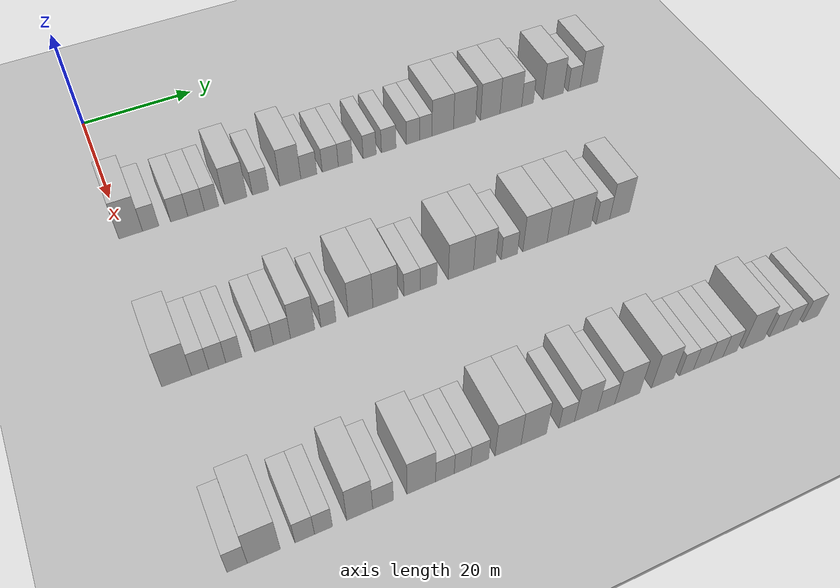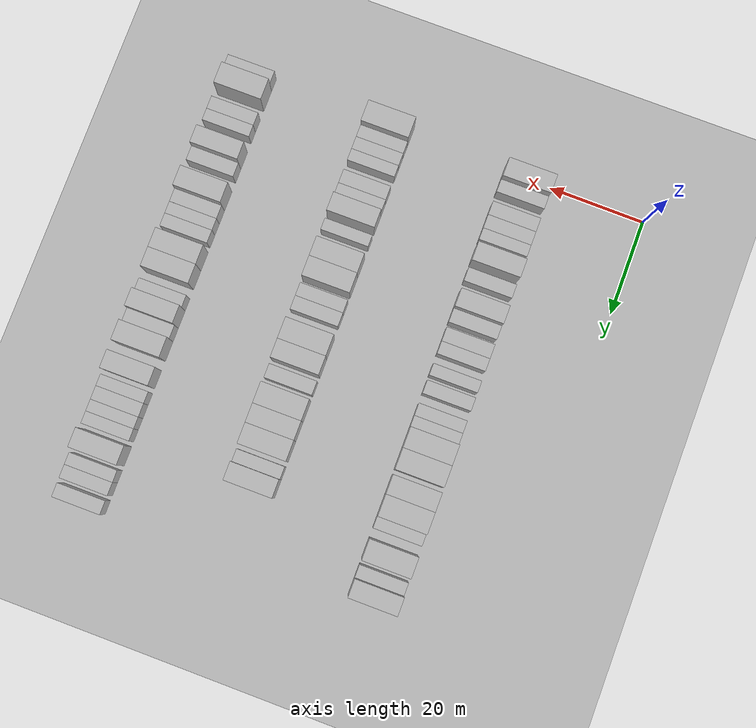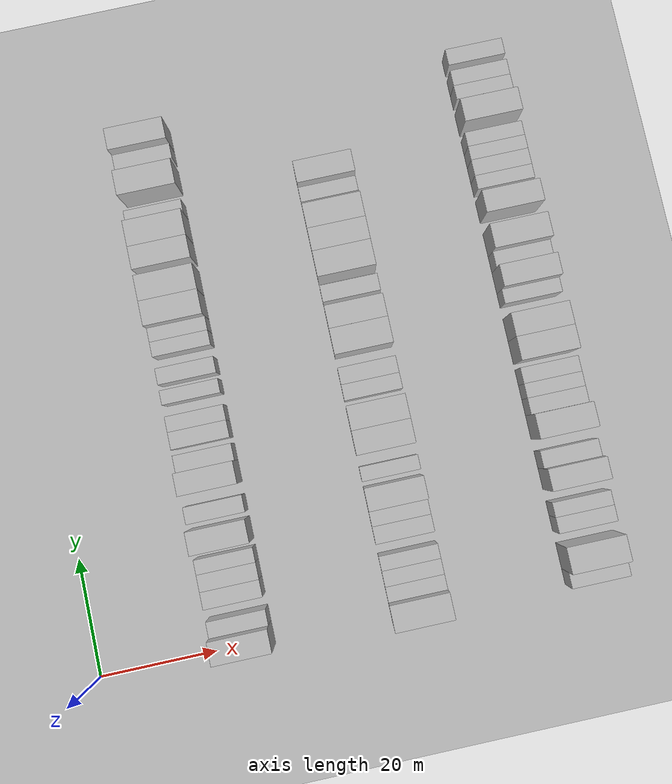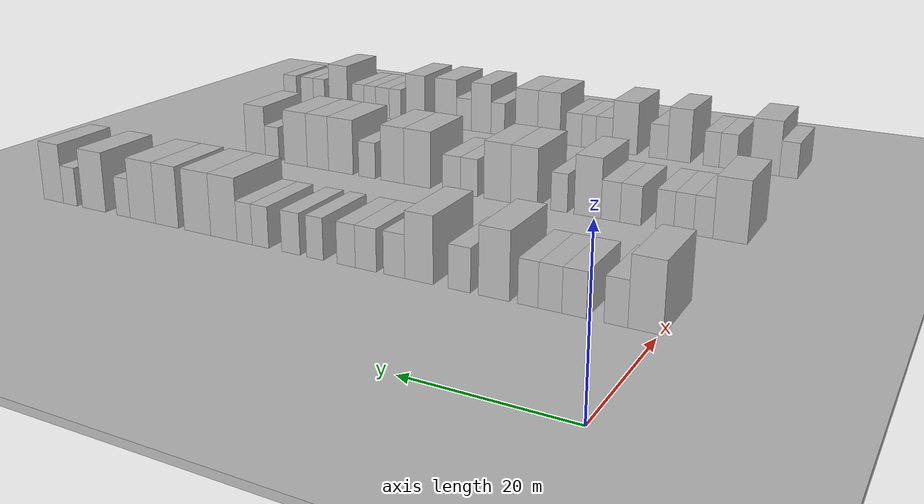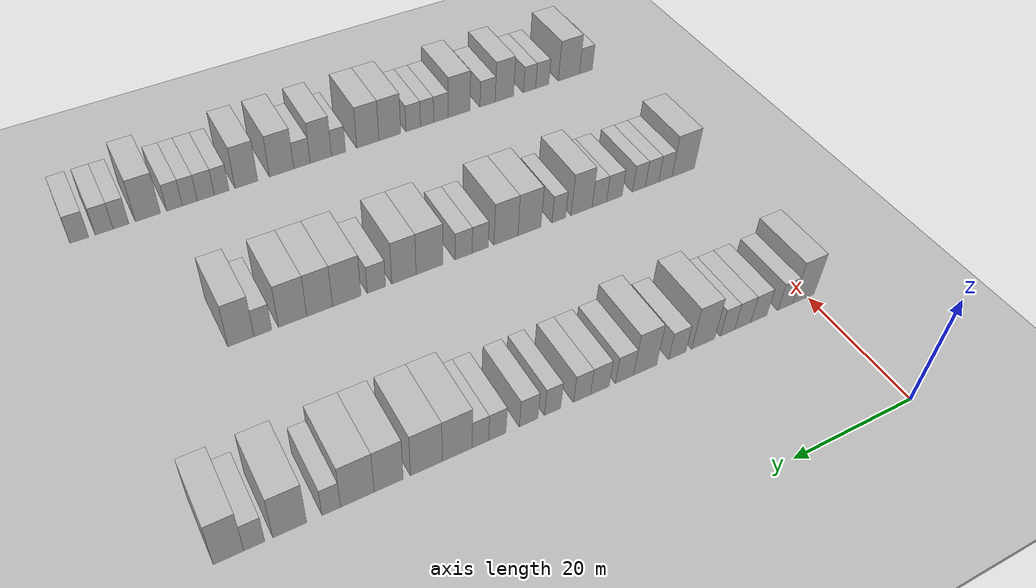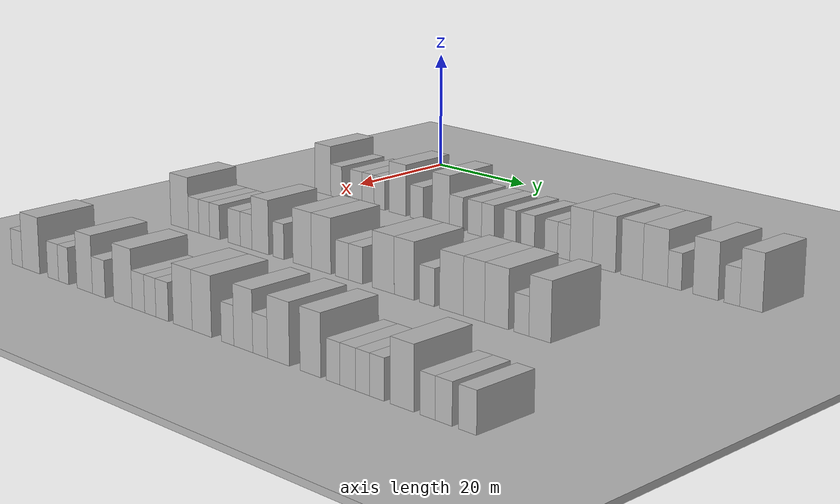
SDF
<sdf version="1.6">
 <world name="default">
  <include><name>ground_plane_1</name><uri>model://HANNAS_ground_plane</uri></include>
  <include>
   <name>ground_plane_2</name>
   <uri>model://HANNAS_ground_plane</uri>
   <pose>100 0 0  0 0 0</pose>
  </include>
  <model name="building_71">
   <static>1</static>
   <pose>25.0000 1.2527 0 0.000000 0.000000 0.000000</pose>
   <link name="link">
    <pose>0 0 4.50 0 0 0</pose>
    <collision name="collision"><geometry><box><size>10.0000 3.9239 9.0000</size></box></geometry></collision>
    <visual name="visual">
     <cast_shadows>0</cast_shadows>
     <geometry><box><size>10.0000 3.9239 9.0000</size></box></geometry>
     <material>
      <script>
       <uri>model://HANNAS_wall/materials/scripts</uri>
       <uri>model://HANNAS_wall/materials/textures</uri>
       <name>vrc/HANNAS_wall</name>
      </script>
     </material>
    </visual>
   </link>
  </model>
  <model name="building_72">
   <static>1</static>
   <pose>25.0000 4.5693 0 0.000000 0.000000 0.000000</pose>
   <link name="link">
    <pose>0 0 3.00 0 0 0</pose>
    <collision name="collision"><geometry><box><size>10.0000 2.7093 6.0000</size></box></geometry></collision>
    <visual name="visual">
     <cast_shadows>0</cast_shadows>
     <geometry><box><size>10.0000 2.7093 6.0000</size></box></geometry>
     <material>
      <script>
       <uri>model://HANNAS_wall/materials/scripts</uri>
       <uri>model://HANNAS_wall/materials/textures</uri>
       <name>vrc/HANNAS_wall</name>
      </script>
     </material>
    </visual>
   </link>
  </model>
  <model name="building_73">
   <static>1</static>
   <pose>25.0000 9.3771 0 0.000000 0.000000 0.000000</pose>
   <link name="link">
    <pose>0 0 3.00 0 0 0</pose>
    <collision name="collision"><geometry><box><size>10.0000 2.9063 6.0000</size></box></geometry></collision>
    <visual name="visual">
     <cast_shadows>0</cast_shadows>
     <geometry><box><size>10.0000 2.9063 6.0000</size></box></geometry>
     <material>
      <script>
       <uri>model://HANNAS_wall/materials/scripts</uri>
       <uri>model://HANNAS_wall/materials/textures</uri>
       <name>vrc/HANNAS_wall</name>
      </script>
     </material>
    </visual>
   </link>
  </model>
  <model name="building_74">
   <static>1</static>
   <pose>25.0000 12.2597 0 0.000000 0.000000 0.000000</pose>
   <link name="link">
    <pose>0 0 3.00 0 0 0</pose>
    <collision name="collision"><geometry><box><size>10.0000 2.8591 6.0000</size></box></geometry></collision>
    <visual name="visual">
     <cast_shadows>0</cast_shadows>
     <geometry><box><size>10.0000 2.8591 6.0000</size></box></geometry>
     <material>
      <script>
       <uri>model://HANNAS_wall/materials/scripts</uri>
       <uri>model://HANNAS_wall/materials/textures</uri>
       <name>vrc/HANNAS_wall</name>
      </script>
     </material>
    </visual>
   </link>
  </model>
  <model name="building_75">
   <static>1</static>
   <pose>25.0000 14.9231 0 0.000000 0.000000 0.000000</pose>
   <link name="link">
    <pose>0 0 3.00 0 0 0</pose>
    <collision name="collision"><geometry><box><size>10.0000 2.4677 6.0000</size></box></geometry></collision>
    <visual name="visual">
     <cast_shadows>0</cast_shadows>
     <geometry><box><size>10.0000 2.4677 6.0000</size></box></geometry>
     <material>
      <script>
       <uri>model://HANNAS_wall/materials/scripts</uri>
       <uri>model://HANNAS_wall/materials/textures</uri>
       <name>vrc/HANNAS_wall</name>
      </script>
     </material>
    </visual>
   </link>
  </model>
  <model name="building_76">
   <static>1</static>
   <pose>25.0000 19.1197 0 0.000000 0.000000 0.000000</pose>
   <link name="link">
    <pose>0 0 4.50 0 0 0</pose>
    <collision name="collision"><geometry><box><size>10.0000 3.9254 9.0000</size></box></geometry></collision>
    <visual name="visual">
     <cast_shadows>0</cast_shadows>
     <geometry><box><size>10.0000 3.9254 9.0000</size></box></geometry>
     <material>
      <script>
       <uri>model://HANNAS_wall/materials/scripts</uri>
       <uri>model://HANNAS_wall/materials/textures</uri>
       <name>vrc/HANNAS_wall</name>
      </script>
     </material>
    </visual>
   </link>
  </model>
  <model name="building_77">
   <static>1</static>
   <pose>25.0000 23.5217 0 0.000000 0.000000 0.000000</pose>
   <link name="link">
    <pose>0 0 3.00 0 0 0</pose>
    <collision name="collision"><geometry><box><size>10.0000 2.8787 6.0000</size></box></geometry></collision>
    <visual name="visual">
     <cast_shadows>0</cast_shadows>
     <geometry><box><size>10.0000 2.8787 6.0000</size></box></geometry>
     <material>
      <script>
       <uri>model://HANNAS_wall/materials/scripts</uri>
       <uri>model://HANNAS_wall/materials/textures</uri>
       <name>vrc/HANNAS_wall</name>
      </script>
     </material>
    </visual>
   </link>
  </model>
  <model name="building_78">
   <static>1</static>
   <pose>25.0000 28.8620 0 0.000000 0.000000 0.000000</pose>
   <link name="link">
    <pose>0 0 4.50 0 0 0</pose>
    <collision name="collision"><geometry><box><size>10.0000 3.8019 9.0000</size></box></geometry></collision>
    <visual name="visual">
     <cast_shadows>0</cast_shadows>
     <geometry><box><size>10.0000 3.8019 9.0000</size></box></geometry>
     <material>
      <script>
       <uri>model://HANNAS_wall/materials/scripts</uri>
       <uri>model://HANNAS_wall/materials/textures</uri>
       <name>vrc/HANNAS_wall</name>
      </script>
     </material>
    </visual>
   </link>
  </model>
  <model name="building_79">
   <static>1</static>
   <pose>25.0000 32.2296 0 0.000000 0.000000 0.000000</pose>
   <link name="link">
    <pose>0 0 3.00 0 0 0</pose>
    <collision name="collision"><geometry><box><size>10.0000 2.9332 6.0000</size></box></geometry></collision>
    <visual name="visual">
     <cast_shadows>0</cast_shadows>
     <geometry><box><size>10.0000 2.9332 6.0000</size></box></geometry>
     <material>
      <script>
       <uri>model://HANNAS_wall/materials/scripts</uri>
       <uri>model://HANNAS_wall/materials/textures</uri>
       <name>vrc/HANNAS_wall</name>
      </script>
     </material>
    </visual>
   </link>
  </model>
  <model name="building_80">
   <static>1</static>
   <pose>25.0000 36.1826 0 0.000000 0.000000 0.000000</pose>
   <link name="link">
    <pose>0 0 3.00 0 0 0</pose>
    <collision name="collision"><geometry><box><size>10.0000 2.9728 6.0000</size></box></geometry></collision>
    <visual name="visual">
     <cast_shadows>0</cast_shadows>
     <geometry><box><size>10.0000 2.9728 6.0000</size></box></geometry>
     <material>
      <script>
       <uri>model://HANNAS_wall/materials/scripts</uri>
       <uri>model://HANNAS_wall/materials/textures</uri>
       <name>vrc/HANNAS_wall</name>
      </script>
     </material>
    </visual>
   </link>
  </model>
  <model name="building_81">
   <static>1</static>
   <pose>25.0000 38.9981 0 0.000000 0.000000 0.000000</pose>
   <link name="link">
    <pose>0 0 3.00 0 0 0</pose>
    <collision name="collision"><geometry><box><size>10.0000 2.6584 6.0000</size></box></geometry></collision>
    <visual name="visual">
     <cast_shadows>0</cast_shadows>
     <geometry><box><size>10.0000 2.6584 6.0000</size></box></geometry>
     <material>
      <script>
       <uri>model://HANNAS_wall/materials/scripts</uri>
       <uri>model://HANNAS_wall/materials/textures</uri>
       <name>vrc/HANNAS_wall</name>
      </script>
     </material>
    </visual>
   </link>
  </model>
  <model name="building_82">
   <static>1</static>
   <pose>25.0000 43.5625 0 0.000000 0.000000 0.000000</pose>
   <link name="link">
    <pose>0 0 3.00 0 0 0</pose>
    <collision name="collision"><geometry><box><size>10.0000 2.4703 6.0000</size></box></geometry></collision>
    <visual name="visual">
     <cast_shadows>0</cast_shadows>
     <geometry><box><size>10.0000 2.4703 6.0000</size></box></geometry>
     <material>
      <script>
       <uri>model://HANNAS_wall/materials/scripts</uri>
       <uri>model://HANNAS_wall/materials/textures</uri>
       <name>vrc/HANNAS_wall</name>
      </script>
     </material>
    </visual>
   </link>
  </model>
  <model name="building_83">
   <static>1</static>
   <pose>25.0000 47.1947 0 0.000000 0.000000 0.000000</pose>
   <link name="link">
    <pose>0 0 3.00 0 0 0</pose>
    <collision name="collision"><geometry><box><size>10.0000 2.7941 6.0000</size></box></geometry></collision>
    <visual name="visual">
     <cast_shadows>0</cast_shadows>
     <geometry><box><size>10.0000 2.7941 6.0000</size></box></geometry>
     <material>
      <script>
       <uri>model://HANNAS_wall/materials/scripts</uri>
       <uri>model://HANNAS_wall/materials/textures</uri>
       <name>vrc/HANNAS_wall</name>
      </script>
     </material>
    </visual>
   </link>
  </model>
  <model name="building_84">
   <static>1</static>
   <pose>25.0000 51.8778 0 0.000000 0.000000 0.000000</pose>
   <link name="link">
    <pose>0 0 3.00 0 0 0</pose>
    <collision name="collision"><geometry><box><size>10.0000 2.5721 6.0000</size></box></geometry></collision>
    <visual name="visual">
     <cast_shadows>0</cast_shadows>
     <geometry><box><size>10.0000 2.5721 6.0000</size></box></geometry>
     <material>
      <script>
       <uri>model://HANNAS_wall/materials/scripts</uri>
       <uri>model://HANNAS_wall/materials/textures</uri>
       <name>vrc/HANNAS_wall</name>
      </script>
     </material>
    </visual>
   </link>
  </model>
  <model name="building_85">
   <static>1</static>
   <pose>25.0000 54.3774 0 0.000000 0.000000 0.000000</pose>
   <link name="link">
    <pose>0 0 3.00 0 0 0</pose>
    <collision name="collision"><geometry><box><size>10.0000 2.4270 6.0000</size></box></geometry></collision>
    <visual name="visual">
     <cast_shadows>0</cast_shadows>
     <geometry><box><size>10.0000 2.4270 6.0000</size></box></geometry>
     <material>
      <script>
       <uri>model://HANNAS_wall/materials/scripts</uri>
       <uri>model://HANNAS_wall/materials/textures</uri>
       <name>vrc/HANNAS_wall</name>
      </script>
     </material>
    </visual>
   </link>
  </model>
  <model name="building_86">
   <static>1</static>
   <pose>25.0000 57.7273 0 0.000000 0.000000 0.000000</pose>
   <link name="link">
    <pose>0 0 4.50 0 0 0</pose>
    <collision name="collision"><geometry><box><size>10.0000 4.2729 9.0000</size></box></geometry></collision>
    <visual name="visual">
     <cast_shadows>0</cast_shadows>
     <geometry><box><size>10.0000 4.2729 9.0000</size></box></geometry>
     <material>
      <script>
       <uri>model://HANNAS_wall/materials/scripts</uri>
       <uri>model://HANNAS_wall/materials/textures</uri>
       <name>vrc/HANNAS_wall</name>
      </script>
     </material>
    </visual>
   </link>
  </model>
  <model name="building_87">
   <static>1</static>
   <pose>25.0000 62.0776 0 0.000000 0.000000 0.000000</pose>
   <link name="link">
    <pose>0 0 4.50 0 0 0</pose>
    <collision name="collision"><geometry><box><size>10.0000 4.4278 9.0000</size></box></geometry></collision>
    <visual name="visual">
     <cast_shadows>0</cast_shadows>
     <geometry><box><size>10.0000 4.4278 9.0000</size></box></geometry>
     <material>
      <script>
       <uri>model://HANNAS_wall/materials/scripts</uri>
       <uri>model://HANNAS_wall/materials/textures</uri>
       <name>vrc/HANNAS_wall</name>
      </script>
     </material>
    </visual>
   </link>
  </model>
  <model name="building_88">
   <static>1</static>
   <pose>25.0000 67.2750 0 0.000000 0.000000 0.000000</pose>
   <link name="link">
    <pose>0 0 4.50 0 0 0</pose>
    <collision name="collision"><geometry><box><size>10.0000 3.9670 9.0000</size></box></geometry></collision>
    <visual name="visual">
     <cast_shadows>0</cast_shadows>
     <geometry><box><size>10.0000 3.9670 9.0000</size></box></geometry>
     <material>
      <script>
       <uri>model://HANNAS_wall/materials/scripts</uri>
       <uri>model://HANNAS_wall/materials/textures</uri>
       <name>vrc/HANNAS_wall</name>
      </script>
     </material>
    </visual>
   </link>
  </model>
  <model name="building_89">
   <static>1</static>
   <pose>25.0000 71.5074 0 0.000000 0.000000 0.000000</pose>
   <link name="link">
    <pose>0 0 4.50 0 0 0</pose>
    <collision name="collision"><geometry><box><size>10.0000 4.4980 9.0000</size></box></geometry></collision>
    <visual name="visual">
     <cast_shadows>0</cast_shadows>
     <geometry><box><size>10.0000 4.4980 9.0000</size></box></geometry>
     <material>
      <script>
       <uri>model://HANNAS_wall/materials/scripts</uri>
       <uri>model://HANNAS_wall/materials/textures</uri>
       <name>vrc/HANNAS_wall</name>
      </script>
     </material>
    </visual>
   </link>
  </model>
  <model name="building_90">
   <static>1</static>
   <pose>25.0000 74.9785 0 0.000000 0.000000 0.000000</pose>
   <link name="link">
    <pose>0 0 3.00 0 0 0</pose>
    <collision name="collision"><geometry><box><size>10.0000 2.4441 6.0000</size></box></geometry></collision>
    <visual name="visual">
     <cast_shadows>0</cast_shadows>
     <geometry><box><size>10.0000 2.4441 6.0000</size></box></geometry>
     <material>
      <script>
       <uri>model://HANNAS_wall/materials/scripts</uri>
       <uri>model://HANNAS_wall/materials/textures</uri>
       <name>vrc/HANNAS_wall</name>
      </script>
     </material>
    </visual>
   </link>
  </model>
  <model name="building_91">
   <static>1</static>
   <pose>25.0000 80.3716 0 0.000000 0.000000 0.000000</pose>
   <link name="link">
    <pose>0 0 4.50 0 0 0</pose>
    <collision name="collision"><geometry><box><size>10.0000 4.3422 9.0000</size></box></geometry></collision>
    <visual name="visual">
     <cast_shadows>0</cast_shadows>
     <geometry><box><size>10.0000 4.3422 9.0000</size></box></geometry>
     <material>
      <script>
       <uri>model://HANNAS_wall/materials/scripts</uri>
       <uri>model://HANNAS_wall/materials/textures</uri>
       <name>vrc/HANNAS_wall</name>
      </script>
     </material>
    </visual>
   </link>
  </model>
  <model name="building_92">
   <static>1</static>
   <pose>25.0000 84.8611 0 0.000000 0.000000 0.000000</pose>
   <link name="link">
    <pose>0 0 3.00 0 0 0</pose>
    <collision name="collision"><geometry><box><size>10.0000 2.6367 6.0000</size></box></geometry></collision>
    <visual name="visual">
     <cast_shadows>0</cast_shadows>
     <geometry><box><size>10.0000 2.6367 6.0000</size></box></geometry>
     <material>
      <script>
       <uri>model://HANNAS_wall/materials/scripts</uri>
       <uri>model://HANNAS_wall/materials/textures</uri>
       <name>vrc/HANNAS_wall</name>
      </script>
     </material>
    </visual>
   </link>
  </model>
  <model name="building_93">
   <static>1</static>
   <pose>25.0000 88.0637 0 0.000000 0.000000 0.000000</pose>
   <link name="link">
    <pose>0 0 4.50 0 0 0</pose>
    <collision name="collision"><geometry><box><size>10.0000 3.7685 9.0000</size></box></geometry></collision>
    <visual name="visual">
     <cast_shadows>0</cast_shadows>
     <geometry><box><size>10.0000 3.7685 9.0000</size></box></geometry>
     <material>
      <script>
       <uri>model://HANNAS_wall/materials/scripts</uri>
       <uri>model://HANNAS_wall/materials/textures</uri>
       <name>vrc/HANNAS_wall</name>
      </script>
     </material>
    </visual>
   </link>
  </model>
  <model name="building_211">
   <static>1</static>
   <pose>55.0000 0.3540 0 0.000000 0.000000 0.000000</pose>
   <link name="link">
    <pose>0 0 4.50 0 0 0</pose>
    <collision name="collision"><geometry><box><size>10.0000 4.4570 9.0000</size></box></geometry></collision>
    <visual name="visual">
     <cast_shadows>0</cast_shadows>
     <geometry><box><size>10.0000 4.4570 9.0000</size></box></geometry>
     <material>
      <script>
       <uri>model://HANNAS_wall/materials/scripts</uri>
       <uri>model://HANNAS_wall/materials/textures</uri>
       <name>vrc/HANNAS_wall</name>
      </script>
     </material>
    </visual>
   </link>
  </model>
  <model name="building_212">
   <static>1</static>
   <pose>55.0000 3.8703 0 0.000000 0.000000 0.000000</pose>
   <link name="link">
    <pose>0 0 3.00 0 0 0</pose>
    <collision name="collision"><geometry><box><size>10.0000 2.5756 6.0000</size></box></geometry></collision>
    <visual name="visual">
     <cast_shadows>0</cast_shadows>
     <geometry><box><size>10.0000 2.5756 6.0000</size></box></geometry>
     <material>
      <script>
       <uri>model://HANNAS_wall/materials/scripts</uri>
       <uri>model://HANNAS_wall/materials/textures</uri>
       <name>vrc/HANNAS_wall</name>
      </script>
     </material>
    </visual>
   </link>
  </model>
  <model name="building_213">
   <static>1</static>
   <pose>55.0000 6.4711 0 0.000000 0.000000 0.000000</pose>
   <link name="link">
    <pose>0 0 3.00 0 0 0</pose>
    <collision name="collision"><geometry><box><size>10.0000 2.6260 6.0000</size></box></geometry></collision>
    <visual name="visual">
     <cast_shadows>0</cast_shadows>
     <geometry><box><size>10.0000 2.6260 6.0000</size></box></geometry>
     <material>
      <script>
       <uri>model://HANNAS_wall/materials/scripts</uri>
       <uri>model://HANNAS_wall/materials/textures</uri>
       <name>vrc/HANNAS_wall</name>
      </script>
     </material>
    </visual>
   </link>
  </model>
  <model name="building_214">
   <static>1</static>
   <pose>55.0000 9.0140 0 0.000000 0.000000 0.000000</pose>
   <link name="link">
    <pose>0 0 3.00 0 0 0</pose>
    <collision name="collision"><geometry><box><size>10.0000 2.4597 6.0000</size></box></geometry></collision>
    <visual name="visual">
     <cast_shadows>0</cast_shadows>
     <geometry><box><size>10.0000 2.4597 6.0000</size></box></geometry>
     <material>
      <script>
       <uri>model://HANNAS_wall/materials/scripts</uri>
       <uri>model://HANNAS_wall/materials/textures</uri>
       <name>vrc/HANNAS_wall</name>
      </script>
     </material>
    </visual>
   </link>
  </model>
  <model name="building_215">
   <static>1</static>
   <pose>55.0000 13.7082 0 0.000000 0.000000 0.000000</pose>
   <link name="link">
    <pose>0 0 3.00 0 0 0</pose>
    <collision name="collision"><geometry><box><size>10.0000 2.9287 6.0000</size></box></geometry></collision>
    <visual name="visual">
     <cast_shadows>0</cast_shadows>
     <geometry><box><size>10.0000 2.9287 6.0000</size></box></geometry>
     <material>
      <script>
       <uri>model://HANNAS_wall/materials/scripts</uri>
       <uri>model://HANNAS_wall/materials/textures</uri>
       <name>vrc/HANNAS_wall</name>
      </script>
     </material>
    </visual>
   </link>
  </model>
  <model name="building_216">
   <static>1</static>
   <pose>55.0000 16.5301 0 0.000000 0.000000 0.000000</pose>
   <link name="link">
    <pose>0 0 3.00 0 0 0</pose>
    <collision name="collision"><geometry><box><size>10.0000 2.7150 6.0000</size></box></geometry></collision>
    <visual name="visual">
     <cast_shadows>0</cast_shadows>
     <geometry><box><size>10.0000 2.7150 6.0000</size></box></geometry>
     <material>
      <script>
       <uri>model://HANNAS_wall/materials/scripts</uri>
       <uri>model://HANNAS_wall/materials/textures</uri>
       <name>vrc/HANNAS_wall</name>
      </script>
     </material>
    </visual>
   </link>
  </model>
  <model name="building_217">
   <static>1</static>
   <pose>55.0000 19.8241 0 0.000000 0.000000 0.000000</pose>
   <link name="link">
    <pose>0 0 4.50 0 0 0</pose>
    <collision name="collision"><geometry><box><size>10.0000 3.8732 9.0000</size></box></geometry></collision>
    <visual name="visual">
     <cast_shadows>0</cast_shadows>
     <geometry><box><size>10.0000 3.8732 9.0000</size></box></geometry>
     <material>
      <script>
       <uri>model://HANNAS_wall/materials/scripts</uri>
       <uri>model://HANNAS_wall/materials/textures</uri>
       <name>vrc/HANNAS_wall</name>
      </script>
     </material>
    </visual>
   </link>
  </model>
  <model name="building_218">
   <static>1</static>
   <pose>55.0000 23.9931 0 0.000000 0.000000 0.000000</pose>
   <link name="link">
    <pose>0 0 3.00 0 0 0</pose>
    <collision name="collision"><geometry><box><size>10.0000 2.4647 6.0000</size></box></geometry></collision>
    <visual name="visual">
     <cast_shadows>0</cast_shadows>
     <geometry><box><size>10.0000 2.4647 6.0000</size></box></geometry>
     <material>
      <script>
       <uri>model://HANNAS_wall/materials/scripts</uri>
       <uri>model://HANNAS_wall/materials/textures</uri>
       <name>vrc/HANNAS_wall</name>
      </script>
     </material>
    </visual>
   </link>
  </model>
  <model name="building_219">
   <static>1</static>
   <pose>55.0000 29.2766 0 0.000000 0.000000 0.000000</pose>
   <link name="link">
    <pose>0 0 4.50 0 0 0</pose>
    <collision name="collision"><geometry><box><size>10.0000 4.1023 9.0000</size></box></geometry></collision>
    <visual name="visual">
     <cast_shadows>0</cast_shadows>
     <geometry><box><size>10.0000 4.1023 9.0000</size></box></geometry>
     <material>
      <script>
       <uri>model://HANNAS_wall/materials/scripts</uri>
       <uri>model://HANNAS_wall/materials/textures</uri>
       <name>vrc/HANNAS_wall</name>
      </script>
     </material>
    </visual>
   </link>
  </model>
  <model name="building_220">
   <static>1</static>
   <pose>55.0000 33.4221 0 0.000000 0.000000 0.000000</pose>
   <link name="link">
    <pose>0 0 4.50 0 0 0</pose>
    <collision name="collision"><geometry><box><size>10.0000 4.1888 9.0000</size></box></geometry></collision>
    <visual name="visual">
     <cast_shadows>0</cast_shadows>
     <geometry><box><size>10.0000 4.1888 9.0000</size></box></geometry>
     <material>
      <script>
       <uri>model://HANNAS_wall/materials/scripts</uri>
       <uri>model://HANNAS_wall/materials/textures</uri>
       <name>vrc/HANNAS_wall</name>
      </script>
     </material>
    </visual>
   </link>
  </model>
  <model name="building_221">
   <static>1</static>
   <pose>55.0000 37.8941 0 0.000000 0.000000 0.000000</pose>
   <link name="link">
    <pose>0 0 3.00 0 0 0</pose>
    <collision name="collision"><geometry><box><size>10.0000 2.7552 6.0000</size></box></geometry></collision>
    <visual name="visual">
     <cast_shadows>0</cast_shadows>
     <geometry><box><size>10.0000 2.7552 6.0000</size></box></geometry>
     <material>
      <script>
       <uri>model://HANNAS_wall/materials/scripts</uri>
       <uri>model://HANNAS_wall/materials/textures</uri>
       <name>vrc/HANNAS_wall</name>
      </script>
     </material>
    </visual>
   </link>
  </model>
  <model name="building_222">
   <static>1</static>
   <pose>55.0000 40.7231 0 0.000000 0.000000 0.000000</pose>
   <link name="link">
    <pose>0 0 3.00 0 0 0</pose>
    <collision name="collision"><geometry><box><size>10.0000 2.9027 6.0000</size></box></geometry></collision>
    <visual name="visual">
     <cast_shadows>0</cast_shadows>
     <geometry><box><size>10.0000 2.9027 6.0000</size></box></geometry>
     <material>
      <script>
       <uri>model://HANNAS_wall/materials/scripts</uri>
       <uri>model://HANNAS_wall/materials/textures</uri>
       <name>vrc/HANNAS_wall</name>
      </script>
     </material>
    </visual>
   </link>
  </model>
  <model name="building_223">
   <static>1</static>
   <pose>55.0000 46.4027 0 0.000000 0.000000 0.000000</pose>
   <link name="link">
    <pose>0 0 4.50 0 0 0</pose>
    <collision name="collision"><geometry><box><size>10.0000 4.4567 9.0000</size></box></geometry></collision>
    <visual name="visual">
     <cast_shadows>0</cast_shadows>
     <geometry><box><size>10.0000 4.4567 9.0000</size></box></geometry>
     <material>
      <script>
       <uri>model://HANNAS_wall/materials/scripts</uri>
       <uri>model://HANNAS_wall/materials/textures</uri>
       <name>vrc/HANNAS_wall</name>
      </script>
     </material>
    </visual>
   </link>
  </model>
  <model name="building_224">
   <static>1</static>
   <pose>55.0000 50.6026 0 0.000000 0.000000 0.000000</pose>
   <link name="link">
    <pose>0 0 4.50 0 0 0</pose>
    <collision name="collision"><geometry><box><size>10.0000 3.9430 9.0000</size></box></geometry></collision>
    <visual name="visual">
     <cast_shadows>0</cast_shadows>
     <geometry><box><size>10.0000 3.9430 9.0000</size></box></geometry>
     <material>
      <script>
       <uri>model://HANNAS_wall/materials/scripts</uri>
       <uri>model://HANNAS_wall/materials/textures</uri>
       <name>vrc/HANNAS_wall</name>
      </script>
     </material>
    </visual>
   </link>
  </model>
  <model name="building_225">
   <static>1</static>
   <pose>55.0000 55.0391 0 0.000000 0.000000 0.000000</pose>
   <link name="link">
    <pose>0 0 3.00 0 0 0</pose>
    <collision name="collision"><geometry><box><size>10.0000 2.9300 6.0000</size></box></geometry></collision>
    <visual name="visual">
     <cast_shadows>0</cast_shadows>
     <geometry><box><size>10.0000 2.9300 6.0000</size></box></geometry>
     <material>
      <script>
       <uri>model://HANNAS_wall/materials/scripts</uri>
       <uri>model://HANNAS_wall/materials/textures</uri>
       <name>vrc/HANNAS_wall</name>
      </script>
     </material>
    </visual>
   </link>
  </model>
  <model name="building_226">
   <static>1</static>
   <pose>55.0000 59.7325 0 0.000000 0.000000 0.000000</pose>
   <link name="link">
    <pose>0 0 4.50 0 0 0</pose>
    <collision name="collision"><geometry><box><size>10.0000 4.4568 9.0000</size></box></geometry></collision>
    <visual name="visual">
     <cast_shadows>0</cast_shadows>
     <geometry><box><size>10.0000 4.4568 9.0000</size></box></geometry>
     <material>
      <script>
       <uri>model://HANNAS_wall/materials/scripts</uri>
       <uri>model://HANNAS_wall/materials/textures</uri>
       <name>vrc/HANNAS_wall</name>
      </script>
     </material>
    </visual>
   </link>
  </model>
  <model name="building_227">
   <static>1</static>
   <pose>55.0000 63.9373 0 0.000000 0.000000 0.000000</pose>
   <link name="link">
    <pose>0 0 4.50 0 0 0</pose>
    <collision name="collision"><geometry><box><size>10.0000 3.9529 9.0000</size></box></geometry></collision>
    <visual name="visual">
     <cast_shadows>0</cast_shadows>
     <geometry><box><size>10.0000 3.9529 9.0000</size></box></geometry>
     <material>
      <script>
       <uri>model://HANNAS_wall/materials/scripts</uri>
       <uri>model://HANNAS_wall/materials/textures</uri>
       <name>vrc/HANNAS_wall</name>
      </script>
     </material>
    </visual>
   </link>
  </model>
  <model name="building_228">
   <static>1</static>
   <pose>55.0000 68.0644 0 0.000000 0.000000 0.000000</pose>
   <link name="link">
    <pose>0 0 4.50 0 0 0</pose>
    <collision name="collision"><geometry><box><size>10.0000 4.3014 9.0000</size></box></geometry></collision>
    <visual name="visual">
     <cast_shadows>0</cast_shadows>
     <geometry><box><size>10.0000 4.3014 9.0000</size></box></geometry>
     <material>
      <script>
       <uri>model://HANNAS_wall/materials/scripts</uri>
       <uri>model://HANNAS_wall/materials/textures</uri>
       <name>vrc/HANNAS_wall</name>
      </script>
     </material>
    </visual>
   </link>
  </model>
  <model name="building_229">
   <static>1</static>
   <pose>55.0000 72.5286 0 0.000000 0.000000 0.000000</pose>
   <link name="link">
    <pose>0 0 3.00 0 0 0</pose>
    <collision name="collision"><geometry><box><size>10.0000 2.6268 6.0000</size></box></geometry></collision>
    <visual name="visual">
     <cast_shadows>0</cast_shadows>
     <geometry><box><size>10.0000 2.6268 6.0000</size></box></geometry>
     <material>
      <script>
       <uri>model://HANNAS_wall/materials/scripts</uri>
       <uri>model://HANNAS_wall/materials/textures</uri>
       <name>vrc/HANNAS_wall</name>
      </script>
     </material>
    </visual>
   </link>
  </model>
  <model name="building_230">
   <static>1</static>
   <pose>55.0000 75.7502 0 0.000000 0.000000 0.000000</pose>
   <link name="link">
    <pose>0 0 4.50 0 0 0</pose>
    <collision name="collision"><geometry><box><size>10.0000 3.8165 9.0000</size></box></geometry></collision>
    <visual name="visual">
     <cast_shadows>0</cast_shadows>
     <geometry><box><size>10.0000 3.8165 9.0000</size></box></geometry>
     <material>
      <script>
       <uri>model://HANNAS_wall/materials/scripts</uri>
       <uri>model://HANNAS_wall/materials/textures</uri>
       <name>vrc/HANNAS_wall</name>
      </script>
     </material>
    </visual>
   </link>
  </model>
  <model name="building_338">
   <static>1</static>
   <pose>85.0000 -0.3184 0 0.000000 0.000000 0.000000</pose>
   <link name="link">
    <pose>0 0 3.00 0 0 0</pose>
    <collision name="collision"><geometry><box><size>10.0000 2.7222 6.0000</size></box></geometry></collision>
    <visual name="visual">
     <cast_shadows>0</cast_shadows>
     <geometry><box><size>10.0000 2.7222 6.0000</size></box></geometry>
     <material>
      <script>
       <uri>model://HANNAS_wall/materials/scripts</uri>
       <uri>model://HANNAS_wall/materials/textures</uri>
       <name>vrc/HANNAS_wall</name>
      </script>
     </material>
    </visual>
   </link>
  </model>
  <model name="building_339">
   <static>1</static>
   <pose>85.0000 3.2631 0 0.000000 0.000000 0.000000</pose>
   <link name="link">
    <pose>0 0 4.50 0 0 0</pose>
    <collision name="collision"><geometry><box><size>10.0000 4.4410 9.0000</size></box></geometry></collision>
    <visual name="visual">
     <cast_shadows>0</cast_shadows>
     <geometry><box><size>10.0000 4.4410 9.0000</size></box></geometry>
     <material>
      <script>
       <uri>model://HANNAS_wall/materials/scripts</uri>
       <uri>model://HANNAS_wall/materials/textures</uri>
       <name>vrc/HANNAS_wall</name>
      </script>
     </material>
    </visual>
   </link>
  </model>
  <model name="building_340">
   <static>1</static>
   <pose>85.0000 8.8356 0 0.000000 0.000000 0.000000</pose>
   <link name="link">
    <pose>0 0 3.00 0 0 0</pose>
    <collision name="collision"><geometry><box><size>10.0000 2.7039 6.0000</size></box></geometry></collision>
    <visual name="visual">
     <cast_shadows>0</cast_shadows>
     <geometry><box><size>10.0000 2.7039 6.0000</size></box></geometry>
     <material>
      <script>
       <uri>model://HANNAS_wall/materials/scripts</uri>
       <uri>model://HANNAS_wall/materials/textures</uri>
       <name>vrc/HANNAS_wall</name>
      </script>
     </material>
    </visual>
   </link>
  </model>
  <model name="building_341">
   <static>1</static>
   <pose>85.0000 11.4391 0 0.000000 0.000000 0.000000</pose>
   <link name="link">
    <pose>0 0 3.00 0 0 0</pose>
    <collision name="collision"><geometry><box><size>10.0000 2.5032 6.0000</size></box></geometry></collision>
    <visual name="visual">
     <cast_shadows>0</cast_shadows>
     <geometry><box><size>10.0000 2.5032 6.0000</size></box></geometry>
     <material>
      <script>
       <uri>model://HANNAS_wall/materials/scripts</uri>
       <uri>model://HANNAS_wall/materials/textures</uri>
       <name>vrc/HANNAS_wall</name>
      </script>
     </material>
    </visual>
   </link>
  </model>
  <model name="building_342">
   <static>1</static>
   <pose>85.0000 16.5500 0 0.000000 0.000000 0.000000</pose>
   <link name="link">
    <pose>0 0 4.50 0 0 0</pose>
    <collision name="collision"><geometry><box><size>10.0000 3.7186 9.0000</size></box></geometry></collision>
    <visual name="visual">
     <cast_shadows>0</cast_shadows>
     <geometry><box><size>10.0000 3.7186 9.0000</size></box></geometry>
     <material>
      <script>
       <uri>model://HANNAS_wall/materials/scripts</uri>
       <uri>model://HANNAS_wall/materials/textures</uri>
       <name>vrc/HANNAS_wall</name>
      </script>
     </material>
    </visual>
   </link>
  </model>
  <model name="building_343">
   <static>1</static>
   <pose>85.0000 19.9060 0 0.000000 0.000000 0.000000</pose>
   <link name="link">
    <pose>0 0 3.00 0 0 0</pose>
    <collision name="collision"><geometry><box><size>10.0000 2.9935 6.0000</size></box></geometry></collision>
    <visual name="visual">
     <cast_shadows>0</cast_shadows>
     <geometry><box><size>10.0000 2.9935 6.0000</size></box></geometry>
     <material>
      <script>
       <uri>model://HANNAS_wall/materials/scripts</uri>
       <uri>model://HANNAS_wall/materials/textures</uri>
       <name>vrc/HANNAS_wall</name>
      </script>
     </material>
    </visual>
   </link>
  </model>
  <model name="building_344">
   <static>1</static>
   <pose>85.0000 25.5073 0 0.000000 0.000000 0.000000</pose>
   <link name="link">
    <pose>0 0 4.50 0 0 0</pose>
    <collision name="collision"><geometry><box><size>10.0000 4.2090 9.0000</size></box></geometry></collision>
    <visual name="visual">
     <cast_shadows>0</cast_shadows>
     <geometry><box><size>10.0000 4.2090 9.0000</size></box></geometry>
     <material>
      <script>
       <uri>model://HANNAS_wall/materials/scripts</uri>
       <uri>model://HANNAS_wall/materials/textures</uri>
       <name>vrc/HANNAS_wall</name>
      </script>
     </material>
    </visual>
   </link>
  </model>
  <model name="building_345">
   <static>1</static>
   <pose>85.0000 29.0188 0 0.000000 0.000000 0.000000</pose>
   <link name="link">
    <pose>0 0 3.00 0 0 0</pose>
    <collision name="collision"><geometry><box><size>10.0000 2.8140 6.0000</size></box></geometry></collision>
    <visual name="visual">
     <cast_shadows>0</cast_shadows>
     <geometry><box><size>10.0000 2.8140 6.0000</size></box></geometry>
     <material>
      <script>
       <uri>model://HANNAS_wall/materials/scripts</uri>
       <uri>model://HANNAS_wall/materials/textures</uri>
       <name>vrc/HANNAS_wall</name>
      </script>
     </material>
    </visual>
   </link>
  </model>
  <model name="building_346">
   <static>1</static>
   <pose>85.0000 31.6699 0 0.000000 0.000000 0.000000</pose>
   <link name="link">
    <pose>0 0 3.00 0 0 0</pose>
    <collision name="collision"><geometry><box><size>10.0000 2.4880 6.0000</size></box></geometry></collision>
    <visual name="visual">
     <cast_shadows>0</cast_shadows>
     <geometry><box><size>10.0000 2.4880 6.0000</size></box></geometry>
     <material>
      <script>
       <uri>model://HANNAS_wall/materials/scripts</uri>
       <uri>model://HANNAS_wall/materials/textures</uri>
       <name>vrc/HANNAS_wall</name>
      </script>
     </material>
    </visual>
   </link>
  </model>
  <model name="building_347">
   <static>1</static>
   <pose>85.0000 34.2852 0 0.000000 0.000000 0.000000</pose>
   <link name="link">
    <pose>0 0 3.00 0 0 0</pose>
    <collision name="collision"><geometry><box><size>10.0000 2.7426 6.0000</size></box></geometry></collision>
    <visual name="visual">
     <cast_shadows>0</cast_shadows>
     <geometry><box><size>10.0000 2.7426 6.0000</size></box></geometry>
     <material>
      <script>
       <uri>model://HANNAS_wall/materials/scripts</uri>
       <uri>model://HANNAS_wall/materials/textures</uri>
       <name>vrc/HANNAS_wall</name>
      </script>
     </material>
    </visual>
   </link>
  </model>
  <model name="building_348">
   <static>1</static>
   <pose>85.0000 38.6828 0 0.000000 0.000000 0.000000</pose>
   <link name="link">
    <pose>0 0 4.50 0 0 0</pose>
    <collision name="collision"><geometry><box><size>10.0000 4.0525 9.0000</size></box></geometry></collision>
    <visual name="visual">
     <cast_shadows>0</cast_shadows>
     <geometry><box><size>10.0000 4.0525 9.0000</size></box></geometry>
     <material>
      <script>
       <uri>model://HANNAS_wall/materials/scripts</uri>
       <uri>model://HANNAS_wall/materials/textures</uri>
       <name>vrc/HANNAS_wall</name>
      </script>
     </material>
    </visual>
   </link>
  </model>
  <model name="building_349">
   <static>1</static>
   <pose>85.0000 42.7307 0 0.000000 0.000000 0.000000</pose>
   <link name="link">
    <pose>0 0 4.50 0 0 0</pose>
    <collision name="collision"><geometry><box><size>10.0000 4.0434 9.0000</size></box></geometry></collision>
    <visual name="visual">
     <cast_shadows>0</cast_shadows>
     <geometry><box><size>10.0000 4.0434 9.0000</size></box></geometry>
     <material>
      <script>
       <uri>model://HANNAS_wall/materials/scripts</uri>
       <uri>model://HANNAS_wall/materials/textures</uri>
       <name>vrc/HANNAS_wall</name>
      </script>
     </material>
    </visual>
   </link>
  </model>
  <model name="building_350">
   <static>1</static>
   <pose>85.0000 48.0176 0 0.000000 0.000000 0.000000</pose>
   <link name="link">
    <pose>0 0 3.00 0 0 0</pose>
    <collision name="collision"><geometry><box><size>10.0000 2.5305 6.0000</size></box></geometry></collision>
    <visual name="visual">
     <cast_shadows>0</cast_shadows>
     <geometry><box><size>10.0000 2.5305 6.0000</size></box></geometry>
     <material>
      <script>
       <uri>model://HANNAS_wall/materials/scripts</uri>
       <uri>model://HANNAS_wall/materials/textures</uri>
       <name>vrc/HANNAS_wall</name>
      </script>
     </material>
    </visual>
   </link>
  </model>
  <model name="building_351">
   <static>1</static>
   <pose>85.0000 51.1727 0 0.000000 0.000000 0.000000</pose>
   <link name="link">
    <pose>0 0 4.50 0 0 0</pose>
    <collision name="collision"><geometry><box><size>10.0000 3.7797 9.0000</size></box></geometry></collision>
    <visual name="visual">
     <cast_shadows>0</cast_shadows>
     <geometry><box><size>10.0000 3.7797 9.0000</size></box></geometry>
     <material>
      <script>
       <uri>model://HANNAS_wall/materials/scripts</uri>
       <uri>model://HANNAS_wall/materials/textures</uri>
       <name>vrc/HANNAS_wall</name>
      </script>
     </material>
    </visual>
   </link>
  </model>
  <model name="building_352">
   <static>1</static>
   <pose>85.0000 54.4956 0 0.000000 0.000000 0.000000</pose>
   <link name="link">
    <pose>0 0 3.00 0 0 0</pose>
    <collision name="collision"><geometry><box><size>10.0000 2.8661 6.0000</size></box></geometry></collision>
    <visual name="visual">
     <cast_shadows>0</cast_shadows>
     <geometry><box><size>10.0000 2.8661 6.0000</size></box></geometry>
     <material>
      <script>
       <uri>model://HANNAS_wall/materials/scripts</uri>
       <uri>model://HANNAS_wall/materials/textures</uri>
       <name>vrc/HANNAS_wall</name>
      </script>
     </material>
    </visual>
   </link>
  </model>
  <model name="building_353">
   <static>1</static>
   <pose>85.0000 58.0334 0 0.000000 0.000000 0.000000</pose>
   <link name="link">
    <pose>0 0 4.50 0 0 0</pose>
    <collision name="collision"><geometry><box><size>10.0000 4.2093 9.0000</size></box></geometry></collision>
    <visual name="visual">
     <cast_shadows>0</cast_shadows>
     <geometry><box><size>10.0000 4.2093 9.0000</size></box></geometry>
     <material>
      <script>
       <uri>model://HANNAS_wall/materials/scripts</uri>
       <uri>model://HANNAS_wall/materials/textures</uri>
       <name>vrc/HANNAS_wall</name>
      </script>
     </material>
    </visual>
   </link>
  </model>
  <model name="building_354">
   <static>1</static>
   <pose>85.0000 64.0558 0 0.000000 0.000000 0.000000</pose>
   <link name="link">
    <pose>0 0 4.50 0 0 0</pose>
    <collision name="collision"><geometry><box><size>10.0000 3.8354 9.0000</size></box></geometry></collision>
    <visual name="visual">
     <cast_shadows>0</cast_shadows>
     <geometry><box><size>10.0000 3.8354 9.0000</size></box></geometry>
     <material>
      <script>
       <uri>model://HANNAS_wall/materials/scripts</uri>
       <uri>model://HANNAS_wall/materials/textures</uri>
       <name>vrc/HANNAS_wall</name>
      </script>
     </material>
    </visual>
   </link>
  </model>
  <model name="building_355">
   <static>1</static>
   <pose>85.0000 68.1896 0 0.000000 0.000000 0.000000</pose>
   <link name="link">
    <pose>0 0 3.00 0 0 0</pose>
    <collision name="collision"><geometry><box><size>10.0000 2.4322 6.0000</size></box></geometry></collision>
    <visual name="visual">
     <cast_shadows>0</cast_shadows>
     <geometry><box><size>10.0000 2.4322 6.0000</size></box></geometry>
     <material>
      <script>
       <uri>model://HANNAS_wall/materials/scripts</uri>
       <uri>model://HANNAS_wall/materials/textures</uri>
       <name>vrc/HANNAS_wall</name>
      </script>
     </material>
    </visual>
   </link>
  </model>
  <model name="building_356">
   <static>1</static>
   <pose>85.0000 70.8135 0 0.000000 0.000000 0.000000</pose>
   <link name="link">
    <pose>0 0 3.00 0 0 0</pose>
    <collision name="collision"><geometry><box><size>10.0000 2.8156 6.0000</size></box></geometry></collision>
    <visual name="visual">
     <cast_shadows>0</cast_shadows>
     <geometry><box><size>10.0000 2.8156 6.0000</size></box></geometry>
     <material>
      <script>
       <uri>model://HANNAS_wall/materials/scripts</uri>
       <uri>model://HANNAS_wall/materials/textures</uri>
       <name>vrc/HANNAS_wall</name>
      </script>
     </material>
    </visual>
   </link>
  </model>
  <model name="building_357">
   <static>1</static>
   <pose>85.0000 73.4368 0 0.000000 0.000000 0.000000</pose>
   <link name="link">
    <pose>0 0 3.00 0 0 0</pose>
    <collision name="collision"><geometry><box><size>10.0000 2.4310 6.0000</size></box></geometry></collision>
    <visual name="visual">
     <cast_shadows>0</cast_shadows>
     <geometry><box><size>10.0000 2.4310 6.0000</size></box></geometry>
     <material>
      <script>
       <uri>model://HANNAS_wall/materials/scripts</uri>
       <uri>model://HANNAS_wall/materials/textures</uri>
       <name>vrc/HANNAS_wall</name>
      </script>
     </material>
    </visual>
   </link>
  </model>
  <model name="building_358">
   <static>1</static>
   <pose>85.0000 75.9161 0 0.000000 0.000000 0.000000</pose>
   <link name="link">
    <pose>0 0 3.00 0 0 0</pose>
    <collision name="collision"><geometry><box><size>10.0000 2.5275 6.0000</size></box></geometry></collision>
    <visual name="visual">
     <cast_shadows>0</cast_shadows>
     <geometry><box><size>10.0000 2.5275 6.0000</size></box></geometry>
     <material>
      <script>
       <uri>model://HANNAS_wall/materials/scripts</uri>
       <uri>model://HANNAS_wall/materials/textures</uri>
       <name>vrc/HANNAS_wall</name>
      </script>
     </material>
    </visual>
   </link>
  </model>
  <model name="building_359">
   <static>1</static>
   <pose>85.0000 80.1765 0 0.000000 0.000000 0.000000</pose>
   <link name="link">
    <pose>0 0 4.50 0 0 0</pose>
    <collision name="collision"><geometry><box><size>10.0000 3.9933 9.0000</size></box></geometry></collision>
    <visual name="visual">
     <cast_shadows>0</cast_shadows>
     <geometry><box><size>10.0000 3.9933 9.0000</size></box></geometry>
     <material>
      <script>
       <uri>model://HANNAS_wall/materials/scripts</uri>
       <uri>model://HANNAS_wall/materials/textures</uri>
       <name>vrc/HANNAS_wall</name>
      </script>
     </material>
    </visual>
   </link>
  </model>
  <model name="building_360">
   <static>1</static>
   <pose>85.0000 84.4153 0 0.000000 0.000000 0.000000</pose>
   <link name="link">
    <pose>0 0 3.00 0 0 0</pose>
    <collision name="collision"><geometry><box><size>10.0000 2.4842 6.0000</size></box></geometry></collision>
    <visual name="visual">
     <cast_shadows>0</cast_shadows>
     <geometry><box><size>10.0000 2.4842 6.0000</size></box></geometry>
     <material>
      <script>
       <uri>model://HANNAS_wall/materials/scripts</uri>
       <uri>model://HANNAS_wall/materials/textures</uri>
       <name>vrc/HANNAS_wall</name>
      </script>
     </material>
    </visual>
   </link>
  </model>
  <model name="building_361">
   <static>1</static>
   <pose>85.0000 87.0306 0 0.000000 0.000000 0.000000</pose>
   <link name="link">
    <pose>0 0 3.00 0 0 0</pose>
    <collision name="collision"><geometry><box><size>10.0000 2.7465 6.0000</size></box></geometry></collision>
    <visual name="visual">
     <cast_shadows>0</cast_shadows>
     <geometry><box><size>10.0000 2.7465 6.0000</size></box></geometry>
     <material>
      <script>
       <uri>model://HANNAS_wall/materials/scripts</uri>
       <uri>model://HANNAS_wall/materials/textures</uri>
       <name>vrc/HANNAS_wall</name>
      </script>
     </material>
    </visual>
   </link>
  </model>
  <model name="building_362">
   <static>1</static>
   <pose>85.0000 90.8330 0 0.000000 0.000000 0.000000</pose>
   <link name="link">
    <pose>0 0 3.00 0 0 0</pose>
    <collision name="collision"><geometry><box><size>10.0000 2.8583 6.0000</size></box></geometry></collision>
    <visual name="visual">
     <cast_shadows>0</cast_shadows>
     <geometry><box><size>10.0000 2.8583 6.0000</size></box></geometry>
     <material>
      <script>
       <uri>model://HANNAS_wall/materials/scripts</uri>
       <uri>model://HANNAS_wall/materials/textures</uri>
       <name>vrc/HANNAS_wall</name>
      </script>
     </material>
    </visual>
   </link>
  </model>
 </world>
</sdf>
